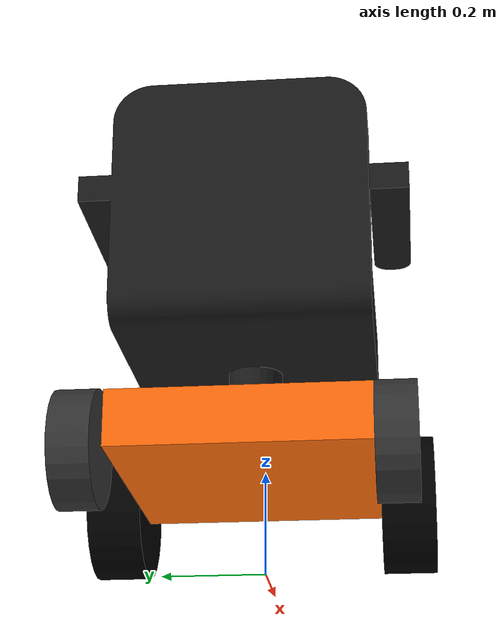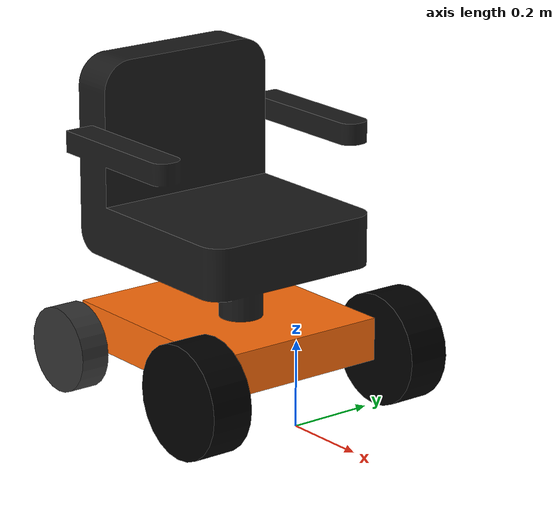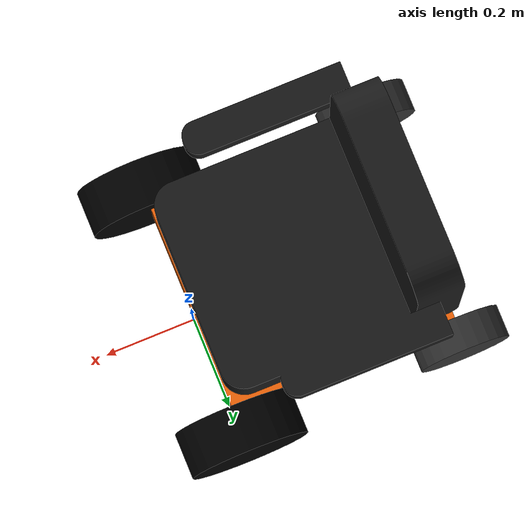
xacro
<?xml version="1.0" ?>

<robot name="model_scwheelchair" xmlns:xacro="https://www.ros.org/wiki/xacro" >

    <xacro:include filename="$(find model_scwheelchair)/urdf/base_model_scwheelchair/materials_.xacro" />
    <xacro:include filename="$(find model_scwheelchair)/urdf/base_model_scwheelchair/macros_.xacro" />
    <xacro:include filename="$(find model_scwheelchair)/urdf/base_model_scwheelchair/model_properties_.xacro" />
    <xacro:include filename="$(find model_scwheelchair)/urdf/base_model_scwheelchair/model_scwheelchair_.gazebo" />

    <link name="base_footprint"/>
    <joint type="fixed" name="base_joint">
      <origin xyz="-${baseLength/2} 0 ${wheelRadius}"  rpy="0 0 0"/>
      <parent link="base_footprint"/>
      <child link="base_link"/>
    </joint>

    <link name="base_link">
        <visual>
            <origin xyz="0 0 ${baseHeight/4}" rpy="0 0 0"/>
            <geometry>
                <box size="${baseLength} ${baseWidth} ${baseHeight}"/>
            </geometry>
            <material name="orange"/>
        </visual>

        <collision>
            <origin xyz="0 0 ${baseHeight/4}" rpy="0 0 0"/>
            <geometry>
                <box size="${baseLength} ${baseWidth} ${baseHeight}"/>
            </geometry>
        </collision>

        <inertial>
            <origin xyz="0 0 ${baseHeight/2}" rpy="0 0 0"/>
            <mass value="${baseMass}"/>
            <xacro:box_inertia m="${baseMass}" x="${baseLength}" y="${baseWidth}" z="${baseHeight}"/>
        </inertial>
    </link>

    <link name="seat_link">
        <visual>
            <origin xyz="0 0 0" rpy="0 0 0"/>
            <geometry>
                <mesh filename="package://model_scwheelchair/meshes/scat_seat.stl"  scale="0.01 0.01 0.01"/>
            </geometry>
            <material name="light_black"/>
        </visual>

        <collision>
            <origin xyz="0 0 0" rpy="0 0 0"/>
            <geometry>
                <mesh filename="package://model_scwheelchair/meshes/scat_seat.stl"  scale="0.01 0.01 0.01"/>
            </geometry>
        </collision>

        <inertial>
            <origin xyz="0 0 ${seatHeight/2}" rpy="0 0 0"/>
            <mass value="${seatMass}"/>
            <xacro:box_inertia m="${seatMass}" x="${baseLength}" y="${baseWidth}" z="${seatHeight}"/>
        </inertial>
    </link>

    <joint name="seat_joint"  type="fixed">
        <origin xyz="0.05 0 0" rpy="0 0 0"/>
        <parent link="base_link"/>
        <child link="seat_link"/>
    </joint>

    <link name="caster_wheel_left">
        <visual>
            <origin xyz="0 0 0" rpy="0 1.5707 1.5707"/>
            <geometry>
                <cylinder length="${casterWidth}" radius="${casterRadius}"/>
            </geometry>
            <material name="grey"/>
        </visual>

        <collision>
            <origin xyz="0 0 0" rpy="0 0 0"/>
            <geometry>
                <sphere radius="${casterRadius}"/>
            </geometry>
        </collision>

        <inertial>
            <origin xyz="0 0 0" rpy="0 0 0"/>
            <mass value="${casterMass}"/>
            <xacro:sphere_inertia m="${casterMass}" r="${casterRadius}"/>
        </inertial>
    </link>

    <joint name="caster_left_joint"  type="fixed">
        <origin xyz="${-baseLength/2} ${baseWidth/2+casterWidth/2} ${-(wheelRadius-casterRadius)}" rpy="0 0 0"/>
        <parent link="base_link"/>
        <child link="caster_wheel_left"/>
    </joint>

    <link name="caster_wheel_right">
        <visual>
            <origin xyz="0 0 0" rpy="0 1.5707 1.5707"/>
            <geometry>
                <cylinder length="${casterWidth}" radius="${casterRadius}"/>
            </geometry>
            <material name="grey"/>
        </visual>

        <collision>
            <origin xyz="0 0 0" rpy="0 0 0"/>
            <geometry>
                <sphere radius="${casterRadius}"/>
            </geometry>
        </collision>

        <inertial>
            <origin xyz="0 0 0" rpy="0 0 0"/>
            <mass value="${casterMass}"/>
            <xacro:sphere_inertia m="${casterMass}" r="${casterRadius}"/>
        </inertial>
    </link>

    <joint name="caster_right_joint"  type="fixed">
        <origin xyz="${-baseLength/2} ${-(baseWidth/2+casterWidth/2)} ${-(wheelRadius-casterRadius)}" rpy="0 0 0"/>
        <parent link="base_link"/>
        <child link="caster_wheel_right"/>
    </joint>

    <link name="wheel_left">
        <visual>
            <origin xyz="0 0 0" rpy="0 1.5707 1.5707"/>
            <geometry>
                <cylinder length="${wheelWidth}" radius="${wheelRadius}"/>
            </geometry>
            <material name="black"/>
        </visual>

        <collision>
            <origin xyz="0 0 0" rpy="0 1.5707 1.5707"/>
            <geometry>
                <cylinder length="${wheelWidth}" radius="${wheelRadius}"/>
            </geometry>
        </collision>

        <inertial>
            <origin xyz="0 0 0" rpy="0 1.5707 1.5707"/>
            <mass value="${wheelMass}"/>
            <xacro:cylinder_inertia m="${wheelMass}" r="${wheelRadius}" h="${wheelWidth}"/>
        </inertial>
    </link>

    <joint name="wheel_left_joint" type="continuous">
        <origin xyz="0 ${baseWidth/2+wheelWidth/2} ${wheelRadius}"  rpy="0 0 0"/>
        <parent link="base_footprint"/>
        <child link="wheel_left"/>
        <axis xyz="0 1 0" rpy="0 0 0"/>
        <limit effort="1000" velocity="1000" />
        <dynamics damping="0.0" friction="0.05" />
        <joint_properties damping="0.0" friction="0.0"/>
    </joint>

    <link name="wheel_right">
        <visual>
            <origin xyz="0 0 0" rpy="0 1.5707 1.5707"/>
            <geometry>
                <cylinder length="${wheelWidth}" radius="${wheelRadius}"/>
            </geometry>
            <material name="black"/>
        </visual>

        <collision>
            <origin xyz="0 0 0" rpy="0 1.5707 1.5707"/>
            <geometry>
                <cylinder length="${wheelWidth}" radius="${wheelRadius}"/>
            </geometry>
        </collision>

        <inertial>
            <origin xyz="0 0 0" rpy="0 1.5707 1.5707"/>
            <mass value="${wheelMass}"/>
            <xacro:cylinder_inertia m="${wheelMass}" r="${wheelRadius}" h="${wheelWidth}"/>
        </inertial>
    </link>

    <joint name="wheel_right_joint" type="continuous">
        <origin xyz="0 ${-(baseWidth/2+wheelWidth/2)} ${wheelRadius}"  rpy="0 0 0"/>
        <parent link="base_footprint"/>
        <child link="wheel_right"/>
        <axis xyz="0 1 0" rpy="0 0 0"/>
        <limit effort="1000" velocity="1000" />
        <dynamics damping="0.0" friction="0.05" />
        <joint_properties damping="0.0" friction="0.0"/>
    </joint>

</robot>

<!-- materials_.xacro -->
<robot xmlns:xacro="https://www.ros.org/wiki/xacro">

  <material name="black">
    <color rgba="0.0 0.0 0.0 1.0"/>
  </material>

  <material name="light_black">
    <color rgba="0.1 0.1 0.1 1.0"/>
  </material>

  <material name="blue">
    <color rgba="0.0 0.0 0.8 1.0"/>
  </material>

  <material name="green">
    <color rgba="0.0 0.8 0.0 1.0"/>
  </material>

  <material name="grey">
    <color rgba="0.2 0.2 0.2 1.0"/>
  </material>

  <material name="orange">
    <color rgba="${255/255} ${108/255} ${10/255} 1.0"/>
  </material>

  <material name="brown">
    <color rgba="${222/255} ${207/255} ${195/255} 1.0"/>
  </material>

  <material name="red">
    <color rgba="0.8 0.0 0.0 1.0"/>
  </material>

  <material name="white">
    <color rgba="1.0 1.0 1.0 1.0"/>
  </material>

</robot>

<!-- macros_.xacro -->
<robot xmlns:xacro="https://www.ros.org/wiki/xacro">

  <xacro:macro name="cylinder_inertia" params="m r h">
    <inertia  ixx="${m*(3*r*r+h*h)/12}" ixy = "0" ixz = "0"
      iyy="${m*(3*r*r+h*h)/12}" iyz = "0"
      izz="${m*r*r/2}"
    />
  </xacro:macro>

  <xacro:macro name="box_inertia" params="m x y z">
    <inertia  ixx="${m*(y*y+z*z)/12}" ixy = "0" ixz = "0"
              iyy="${m*(x*x+z*z)/12}" iyz = "0"
              izz="${m*(x*x+z*z)/12}"
    />
  </xacro:macro>

  <xacro:macro name="sphere_inertia" params="m r">
    <inertia  ixx="${2*m*r*r/5}" ixy = "0" ixz = "0"
              iyy="${2*m*r*r/5}" iyz = "0"
              izz="${2*m*r*r/5}"
    />
  </xacro:macro>

</robot>

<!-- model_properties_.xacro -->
<robot xmlns:xacro="https://www.ros.org/wiki/xacro">

	<!-- Constants -->
	<xacro:property name="PI" value="3.1415926535897931"/>

	<!-- base_link properties -->
	<xacro:property name="baseHeight" value="0.1"/>
	<xacro:property name="baseLength" value="0.5"/>
	<xacro:property name="baseWidth" value="0.45"/>
	<xacro:property name="baseMass" value="1.0"/>

	<!-- seat_link properties -->
	<xacro:property name="seatHeight" value="0.7"/>
	<xacro:property name="seatMass" value="1.0"/>

	<!-- Caster wheel properties -->
	<xacro:property name="casterWidth" value="0.07"/>
	<xacro:property name="casterRadius" value="0.1"/>
	<xacro:property name="casterMass" value="0.5"/>

	<!-- Differential-drive wheels properties -->
	<xacro:property name="wheelWidth" value="0.1"/>
    <xacro:property name="wheelRadius" value="0.13"/>
	<xacro:property name="wheelMass" value="1.0"/>

</robot>
